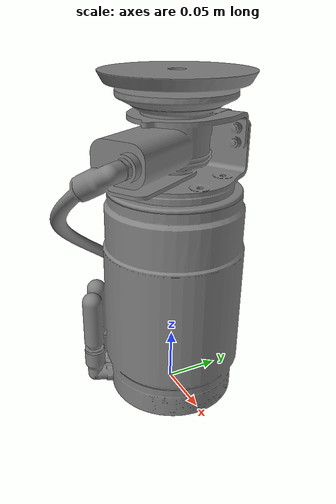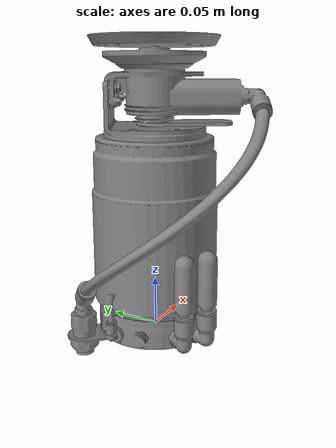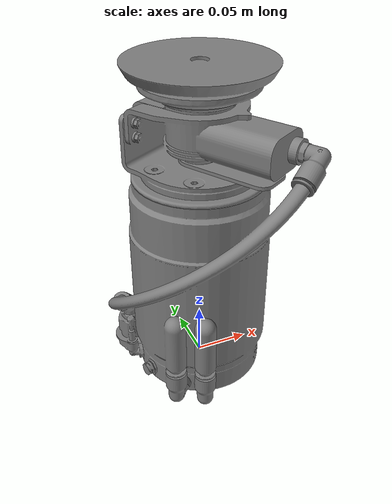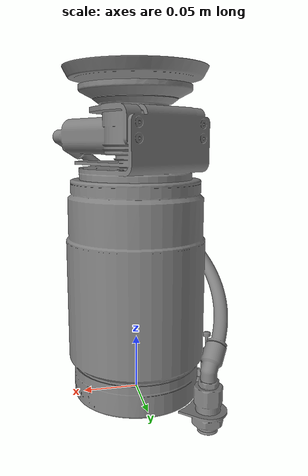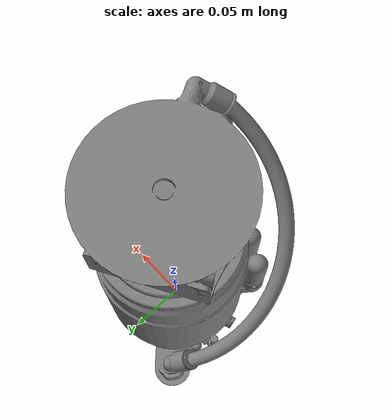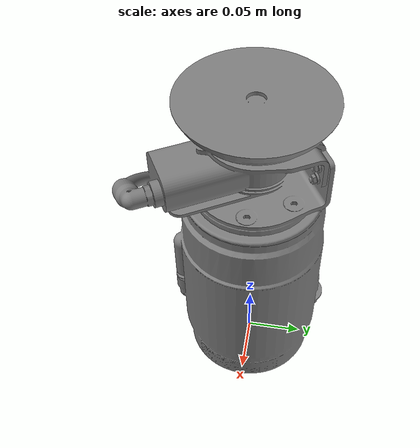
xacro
<?xml version="1.0"?>
<robot name="ferro_sander">
  <link name="tool_origin">
    <visual>
        <geometry>
            <mesh filename="package://pct/data/meshes/ferro_sander.stl"
                scale="1 1 1"/>
        </geometry>
        <material name="ABS" >
            <color rgba="0.5 0.5 0.5 1.0" />
         </material>
        </visual>
  </link>
</robot>
